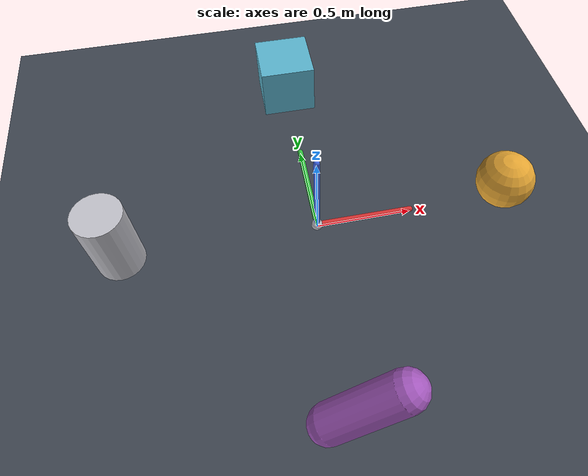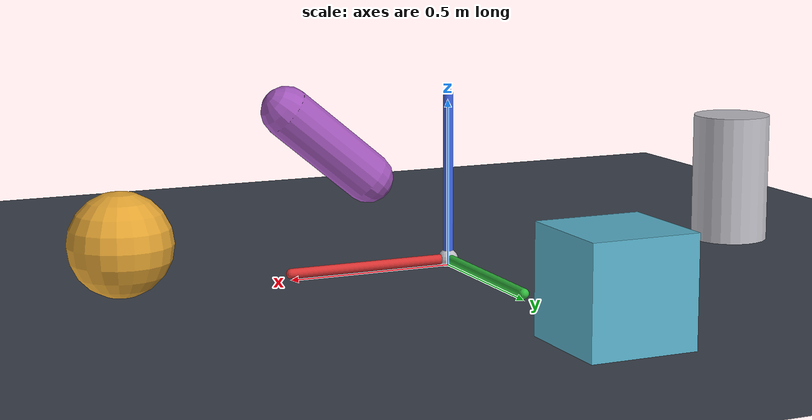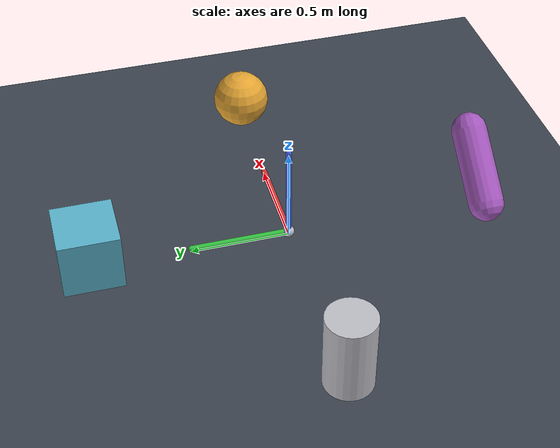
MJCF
<mujoco model="test_scene">
  <compiler angle="degree" autolimits="true"/>

  <visual>
    <headlight ambient="0.25 0.25 0.25" diffuse="0.4 0.4 0.4" specular="0.5 0.5 0.5"/>
    <quality shadowsize="4096" numslices="28" numstacks="16"/>
    <map znear="0.02" zfar="60" shadowclip="1.2" shadowscale="0.7"/>
  </visual>

  <asset>
    <texture name="grid" type="2d" builtin="checker" width="512" height="512"
             rgb1="0.19 0.21 0.25" rgb2="0.28 0.31 0.36"/>
    <material name="grid" texture="grid" texrepeat="1 1" texuniform="true" reflectance="0.15"/>

    <material name="axis_x" rgba="0.85 0.20 0.20 1" specular="0.4" shininess="0.4"/>
    <material name="axis_y" rgba="0.20 0.75 0.25 1" specular="0.4" shininess="0.4"/>
    <material name="axis_z" rgba="0.25 0.40 0.90 1" specular="0.4" shininess="0.4"/>

    <material name="mark_a" rgba="0.90 0.65 0.20 1" specular="0.5" shininess="0.6"/>
    <material name="mark_b" rgba="0.35 0.70 0.80 1" specular="0.5" shininess="0.6"/>
    <material name="mark_c" rgba="0.75 0.75 0.78 1" specular="0.8" shininess="0.9"/>
    <material name="mark_d" rgba="0.65 0.35 0.75 1" specular="0.3" shininess="0.3"/>
  </asset>

  <worldbody>
    <light name="sun" type="directional" pos="3 -4 6" dir="-0.35 0.45 -1"
           diffuse="0.7 0.7 0.7" specular="0.25 0.25 0.25" castshadow="true"/>

    <geom name="floor" type="plane" size="0 0 0.05" material="grid"/>

    <body name="frame">
      <geom name="axis_x" type="capsule" fromto="0 0 0.02 0.5 0 0.02" size="0.015"
            material="axis_x"/>
      <geom name="axis_y" type="capsule" fromto="0 0 0.02 0 0.5 0.02" size="0.015"
            material="axis_y"/>
      <geom name="axis_z" type="capsule" fromto="0 0 0.02 0 0 0.52" size="0.015"
            material="axis_z"/>
      <geom name="axis_origin" type="sphere" pos="0 0 0.02" size="0.03" material="mark_c"/>
    </body>

    <body name="mark_sphere" pos="1 0 0.15">
      <geom name="mark_sphere" type="sphere" size="0.15" material="mark_a"/>
    </body>
    <body name="mark_box" pos="0 1 0.15">
      <geom name="mark_box" type="box" size="0.15 0.15 0.15" material="mark_b"/>
    </body>
    <body name="mark_cylinder" pos="-1 0 0.2">
      <geom name="mark_cylinder" type="cylinder" size="0.12 0.2" material="mark_c"/>
    </body>
    <body name="mark_capsule" pos="0 -1 0">
      <geom name="mark_capsule" type="capsule" fromto="-0.15 0 0.1 0.15 0 0.35" size="0.09"
            material="mark_d"/>
    </body>

    <camera name="default" pos="2.4 -2.6 1.9" xyaxes="0.73 0.68 0 -0.30 0.32 0.90"/>
  </worldbody>
</mujoco>
